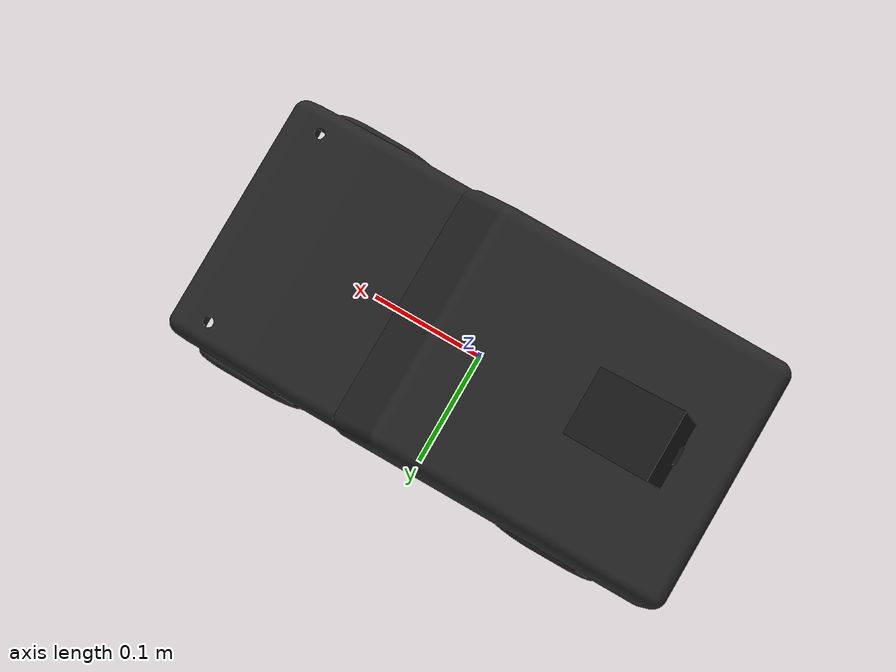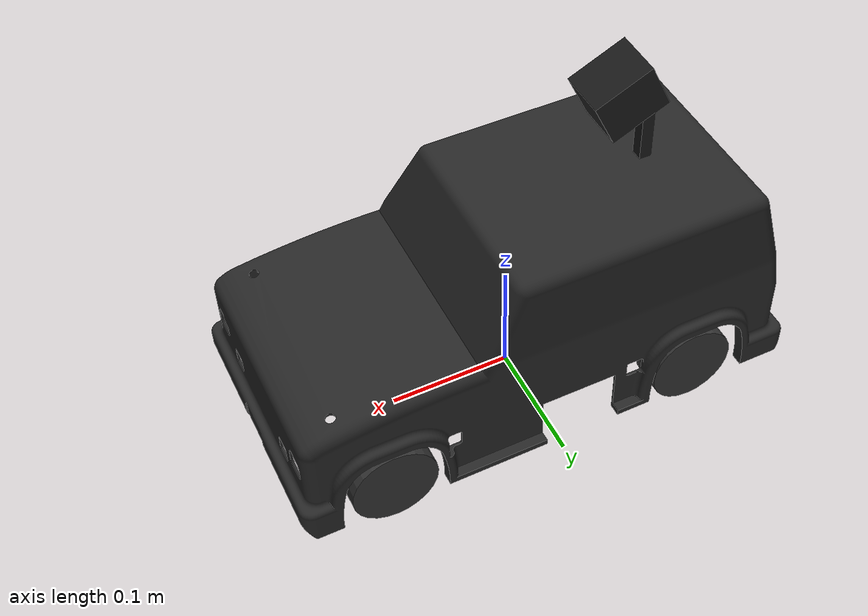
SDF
<?xml version="1.0"?>
<sdf version="1.8">
  <world name="smartrollerz">

    <scene>
      <grid>false</grid>
    </scene>

    <physics name="1ms" type="ignored">
      <max_step_size>0.001</max_step_size>
      <real_time_factor>1.0</real_time_factor>
    </physics>

    <plugin
      filename="gz-sim-physics-system"
      name="gz::sim::systems::Physics">
    </plugin>
    <plugin
      filename="gz-sim-user-commands-system"
      name="gz::sim::systems::UserCommands">
    </plugin>
    <plugin
      filename="gz-sim-scene-broadcaster-system"
      name="gz::sim::systems::SceneBroadcaster">
    </plugin>
    <plugin filename="gz-sim-imu-system"
      name="gz::sim::systems::Imu">
    </plugin>
    <plugin
      filename="gz-sim-sensors-system"
      name="gz::sim::systems::Sensors">
      <render_engine>ogre</render_engine>
    </plugin>

    <light type="directional" name="sun">
      <cast_shadows>true</cast_shadows>
      <pose>0 0 10 0 0 0</pose>
      <diffuse>1 1 1 1</diffuse>
      <specular>0.5 0.5 0.5 1</specular>
      <attenuation>
        <range>1000</range>
        <constant>0.9</constant>
        <linear>0.01</linear>
        <quadratic>0.001</quadratic>
      </attenuation>
      <direction>-0.5 0.1 -0.9</direction>
    </light>
    <light type="directional" name="sun_2">
      <cast_shadows>true</cast_shadows>
      <pose>0 0 10 0 0 0</pose>
      <diffuse>1 1 1 1</diffuse>
      <specular>0.5 0.5 0.5 1</specular>
      <attenuation>
        <range>1000</range>
        <constant>0.9</constant>
        <linear>0.01</linear>
        <quadratic>0.001</quadratic>
      </attenuation>
      <direction>0.5 -0.1 -0.9</direction>
    </light>

    <model name="ground_plane">
      <static>true</static>
      <link name="link">
        <collision name="collision">
          <geometry>
            <plane>
              <normal>0 0 1</normal>
              <size>100 100</size>
            </plane>
          </geometry>
          <surface>
            <friction>
              <ode>
                <mu>50</mu>
              </ode>
              <bullet>
                <friction>1</friction>
                <rolling_friction>0.1</rolling_friction>
              </bullet>
            </friction>
          </surface>
        </collision>
      </link>
    </model>

    <model name="smarty">
      <self_collide>true</self_collide>
      <pose>0 0 0 0 0 0</pose>

      <include merge="true">
        <uri>package://models/smarty</uri>
      </include>

      <plugin
        filename="gz-sim-pose-publisher-system"
        name="gz::sim::systems::PosePublisher">
        <publish_link_pose>true</publish_link_pose>
        <update_frequency>50</update_frequency>
        <use_pose_vector_msg>true</use_pose_vector_msg>
        <static_publisher>true</static_publisher>
        <static_update_frequency>50</static_update_frequency>
      </plugin>

      <!-- Publishes the odometry of the models links to /model/{model_name}/odometry.
      The odometry is the position and orientation of the frames. -->
      <plugin
        filename="gz-sim-odometry-publisher-system"
        name="gz::sim::systems::OdometryPublisher">
        <odom_frame>world</odom_frame>
        <robot_base_frame>smarty</robot_base_frame>
        <dimensions>3</dimensions>
      </plugin>

      <plugin
        filename="gz-sim-ackermann-steering-system"
        name="gz::sim::systems::AckermannSteering">
        <left_joint>front_left_wheel_joint</left_joint>
        <right_joint>front_right_wheel_joint</right_joint>
        <left_steering_joint>front_left_wheel_steering_joint</left_steering_joint>
        <right_steering_joint>front_right_wheel_steering_joint</right_steering_joint>
        <wheel_separation>0.17</wheel_separation>
        <kingpin_width>0.15</kingpin_width>
        <wheel_base>0.26</wheel_base>
        <wheel_radius>0.035</wheel_radius>

        <!-- Estimated values for an RC car. -->
        <min_velocity>-2.0</min_velocity>
        <max_velocity>15.0</max_velocity>
        <min_acceleration>-7.0</min_acceleration>
        <max_acceleration>8.0</max_acceleration>
        <min_jerk>-40.0</min_jerk>
        <max_jerk>40.0</max_jerk>

        <odom_topic>/model/smarty/odometry/ackermann</odom_topic>
        <tf_topic>/model/smarty/pose/ackermann</tf_topic>
      </plugin>
    </model>
  </world>
</sdf>

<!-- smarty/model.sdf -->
<sdf version="1.8">
  <model name='smarty'>

    <link name='chassis'>
      <pose>0 0 0.1125 0 0 0</pose>
      <inertial>
        <mass>2.985</mass>
        <inertia>
          <ixx>0.00558</ixx> <!-- estimated based on izz -->
          <ixy>0</ixy>
          <ixz>0</ixz>
          <iyy>0.0281</iyy> <!-- estimated based on izz -->
          <iyz>0</iyz>
          <izz>0.0283384</izz> <!-- measured -->
        </inertia>
      </inertial>
      <visual name='visual_chassis'>
        <geometry>
          <mesh>
            <uri>package://models/smarty/smarty_sim.stl</uri>
            <scale>1 1 1</scale>
          </mesh>
        </geometry>
        <material>
          <ambient>0.15 0.15 0.15 1</ambient>
          <diffuse>0.15 0.15 0.15 1</diffuse>
          <specular>0.15 0.15 0.15 1</specular>
        </material>
      </visual>
      <collision name='collision_chassis'>
        <geometry>
          <box>
            <size>0.370 0.125 0.120</size>
          </box>
        </geometry>
      </collision>
      <sensor name="imu_sensor" type="imu">
        <always_on>1</always_on>
        <update_rate>200</update_rate>
        <visualize>true</visualize>
        <topic>imu</topic>
      </sensor>
    </link>

    <link name='front_left_wheel'>
      <pose>0.140 0.0845 0.0345 -1.5707 0 0</pose>
      <inertial>
        <mass>0.1</mass>
        <inertia>
          <ixx>0.0145833</ixx>
          <ixy>0</ixy>
          <ixz>0</ixz>
          <iyy>0.0145833</iyy>
          <iyz>0</iyz>
          <izz>0.0125</izz>
        </inertia>
      </inertial>
      <visual name='visual_front_left_wheel'>
        <geometry>
          <cylinder>
            <length>0.028</length>
            <radius>0.0345</radius>
          </cylinder>
        </geometry>
        <material>
          <ambient>0.2 0.2 0.2 1</ambient>
          <diffuse>0.2 0.2 0.2 1</diffuse>
          <specular>0.2 0.2 0.2 1</specular>
        </material>
      </visual>
      <collision name='collision_front_left_wheel'>
        <geometry>
          <cylinder>
            <length>0.028</length>
            <radius>0.0345</radius>
          </cylinder>
        </geometry>
        <surface>
          <friction>
            <ode>
              <mu>0.5</mu>
              <mu2>1.0</mu2>
              <fdir1>0 0 1</fdir1>
            </ode>
            <bullet>
              <friction>0.5</friction>
              <friction2>1</friction2>
              <rolling_friction>0.1</rolling_friction>
            </bullet>
          </friction>
        </surface>
      </collision>
    </link>

    <link name='rear_left_wheel'>
      <pose>-0.115 0.0845 0.0345 -1.5707 0 0</pose>
      <inertial>
        <mass>0.1</mass>
        <inertia>
          <ixx>0.0145833</ixx>
          <ixy>0</ixy>
          <ixz>0</ixz>
          <iyy>0.0145833</iyy>
          <iyz>0</iyz>
          <izz>0.0125</izz>
        </inertia>
      </inertial>
      <visual name='visual_rear_left_wheel'>
        <geometry>
          <cylinder>
            <length>0.028</length>
            <radius>0.0345</radius>
          </cylinder>
        </geometry>
        <material>
          <ambient>0.2 0.2 0.2 1</ambient>
          <diffuse>0.2 0.2 0.2 1</diffuse>
          <specular>0.2 0.2 0.2 1</specular>
        </material>
      </visual>
      <collision name='collision_rear_left_wheel'>
        <geometry>
          <cylinder>
            <length>0.028</length>
            <radius>0.0345</radius>
          </cylinder>
        </geometry>
        <surface>
          <friction>
            <ode>
              <mu>0.5</mu>
              <mu2>1.0</mu2>
              <fdir1>0 0 1</fdir1>
            </ode>
            <bullet>
              <friction>0.5</friction>
              <friction2>1</friction2>
              <rolling_friction>0.5</rolling_friction>
            </bullet>
          </friction>
        </surface>
      </collision>
    </link>

    <link name='front_right_wheel'>
      <pose>0.140 -0.0845 0.0345 -1.5707 0 0</pose>
      <inertial>
        <mass>0.1</mass>
        <inertia>
          <ixx>0.0145833</ixx>
          <ixy>0</ixy>
          <ixz>0</ixz>
          <iyy>0.0145833</iyy>
          <iyz>0</iyz>
          <izz>0.0125</izz>
        </inertia>
      </inertial>
      <visual name='visual_front_right_wheel'>
        <geometry>
          <cylinder>
            <length>0.028</length>
            <radius>0.0345</radius>
          </cylinder>
        </geometry>
        <material>
          <ambient>0.2 0.2 0.2 1</ambient>
          <diffuse>0.2 0.2 0.2 1</diffuse>
          <specular>0.2 0.2 0.2 1</specular>
        </material>
      </visual>
      <collision name='collision_front_right_wheel'>
        <geometry>
          <cylinder>
            <length>0.028</length>
            <radius>0.0345</radius>
          </cylinder>
        </geometry>
        <surface>
          <friction>
            <ode>
              <mu>0.5</mu>
              <mu2>1.0</mu2>
              <fdir1>0 0 1</fdir1>
            </ode>
            <bullet>
              <friction>0.5</friction>
              <friction2>1</friction2>
              <rolling_friction>0.1</rolling_friction>
            </bullet>
          </friction>
        </surface>
      </collision>
    </link>

    <link name='rear_right_wheel'>
      <pose>-0.115 -0.0845 0.0345 -1.5707 0 0</pose>
      <inertial>
        <mass>0.1</mass>
        <inertia>
          <ixx>0.0145833</ixx>
          <ixy>0</ixy>
          <ixz>0</ixz>
          <iyy>0.0145833</iyy>
          <iyz>0</iyz>
          <izz>0.0125</izz>
        </inertia>
      </inertial>
      <visual name='visual_rear_right_wheel'>
        <geometry>
          <cylinder>
            <length>0.028</length>
            <radius>0.0345</radius>
          </cylinder>
        </geometry>
        <material>
          <ambient>0.2 0.2 0.2 1</ambient>
          <diffuse>0.2 0.2 0.2 1</diffuse>
          <specular>0.2 0.2 0.2 1</specular>
        </material>
      </visual>
      <collision name='collision_rear_right_wheel'>
        <geometry>
          <cylinder>
            <length>0.028</length>
            <radius>0.0345</radius>
          </cylinder>
        </geometry>
        <surface>
          <friction>
            <ode>
              <mu>0.5</mu>
              <mu2>1.0</mu2>
              <fdir1>0 0 1</fdir1>
            </ode>
            <bullet>
              <friction>0.5</friction>
              <friction2>1</friction2>
              <rolling_friction>0.5</rolling_friction>
            </bullet>
          </friction>
        </surface>
      </collision>
    </link>

    <link name="front_left_wheel_steering_link">
      <pose>0.140 0.0765 0.0345 0 0 0</pose>
      <inertial>
        <mass>0.01</mass>
        <inertia>
          <ixx>0.0153</ixx>
          <iyy>0.025</iyy>
          <izz>0.0153</izz>
        </inertia>
      </inertial>
    </link>

    <link name="front_right_wheel_steering_link">
      <pose>0.140 -0.0765 0.0345 0 0 0</pose>
      <inertial>
        <mass>0.01</mass>
        <inertia>
          <ixx>0.0153</ixx>
          <iyy>0.025</iyy>
          <izz>0.0153</izz>
        </inertia>
      </inertial>
    </link>

    <joint name="front_left_wheel_steering_joint" type="revolute">
      <parent>chassis</parent>
      <child>front_left_wheel_steering_link</child>
      <axis>
        <xyz>0 0 1</xyz>
        <limit>
          <lower>-0.6</lower>
          <upper>+0.6</upper>
          <velocity>1.0</velocity>
          <effort>25</effort>
        </limit>
      </axis>
    </joint>

    <joint name="front_right_wheel_steering_joint" type="revolute">
      <parent>chassis</parent>
      <child>front_right_wheel_steering_link</child>
      <axis>
        <xyz>0 0 1</xyz>
        <limit>
          <lower>-0.6</lower>
          <upper>+0.6</upper>
          <velocity>1.0</velocity>
          <effort>25</effort>
        </limit>
      </axis>
    </joint>

    <joint name='front_left_wheel_joint' type='revolute'>
      <parent>front_left_wheel_steering_link</parent>
      <child>front_left_wheel</child>
      <axis>
        <xyz>0 0 1</xyz>
        <limit>
          <lower>-1.79769e+308</lower>
          <upper>1.79769e+308</upper>
        </limit>
      </axis>
    </joint>

    <joint name='front_right_wheel_joint' type='revolute'>
      <parent>front_right_wheel_steering_link</parent>
      <child>front_right_wheel</child>
      <axis>
        <xyz>0 0 1</xyz>
        <limit>
          <lower>-1.79769e+308</lower>
          <upper>1.79769e+308</upper>
        </limit>
      </axis>
    </joint>

    <joint name='rear_left_wheel_joint' type='revolute'>
      <parent>chassis</parent>
      <child>rear_left_wheel</child>
      <axis>
        <xyz>0 0 1</xyz>
        <limit>
          <lower>-1.79769e+308</lower>
          <upper>1.79769e+308</upper>
        </limit>
      </axis>
    </joint>

    <joint name='rear_right_wheel_joint' type='revolute'>
      <parent>chassis</parent>
      <child>rear_right_wheel</child>
      <axis>
        <xyz>0 0 1</xyz>
        <limit>
          <lower>-1.79769e+308</lower>
          <upper>1.79769e+308</upper>
        </limit>
      </axis>
    </joint>

    <link name="camera_pole_link">
      <pose>-0.115 0 0.185 0 0 0</pose>
      <inertial>
        <mass>0.1</mass>
        <inertia>
          <ixx>0.0001</ixx>
          <iyy>0.0001</iyy>
          <izz>0.0001</izz>
        </inertia>
      </inertial>
      <collision name="collision_camera_pole">
        <geometry>
          <box>
            <size>0.01 0.01 0.130</size>
          </box>
        </geometry>
      </collision>
      <visual name="visual_camera_pole">
        <geometry>
          <box>
            <size>0.01 0.01 0.130</size>
          </box>
        </geometry>
        <material>
          <ambient>0.1 0.1 0.1 1</ambient>
          <diffuse>0.1 0.1 0.1 1</diffuse>
          <specular>0.1 0.1 0.1 1</specular>
        </material>
      </visual>
    </link>

    <link name="camera_link">
      <pose>-0.090 0 0.250 0 0.436332 0</pose>
      <inertial>
        <mass>0.1</mass>
        <inertia>
          <ixx>0.0001</ixx>
          <iyy>0.0001</iyy>
          <izz>0.0001</izz>
        </inertia>
      </inertial>
      <collision name="collision_camera">
        <geometry>
          <box>
            <size>0.05 0.04 0.04</size>
          </box>
        </geometry>
      </collision>
      <visual name="visual_camera">
        <geometry>
          <box>
            <size>0.05 0.04 0.04</size>
          </box>
        </geometry>
        <material>
          <ambient>0.1 0.1 0.1 1</ambient>
          <diffuse>0.1 0.1 0.1 1</diffuse>
          <specular>0.1 0.1 0.1 1</specular>
        </material>
      </visual>
      <sensor name="camera" type="wideanglecamera">
        <camera>
          <horizontal_fov>1.858</horizontal_fov>
          <image>
            <width>2064</width>
            <height>1544</height>
          </image>
          <clip>
            <near>0.0001</near>
            <far>100</far>
          </clip>
          <lens>
            <type>orthographic</type>
            <scale_to_hfov>true</scale_to_hfov>
          </lens>
        </camera>
        <always_on>1</always_on>
        <update_rate>30</update_rate>
        <visualize>true</visualize>
        <topic>camera</topic>
      </sensor>
    </link>

    <joint name='camera_pole_joint' type='fixed'>
      <parent>chassis</parent>
      <child>camera_pole_link</child>
    </joint>

    <joint name='camera_joint' type='fixed'>
      <parent>camera_pole_link</parent>
      <child>camera_link</child>
    </joint>

  </model>
</sdf>
